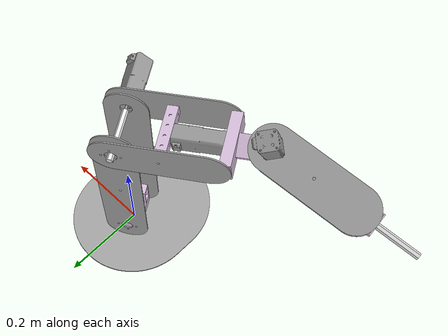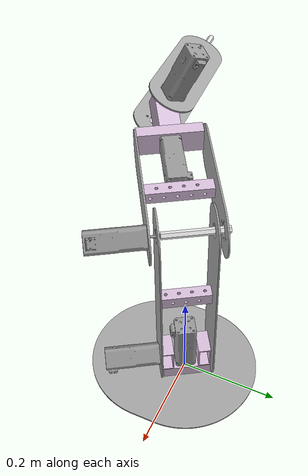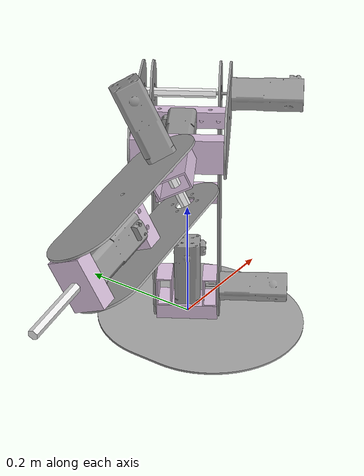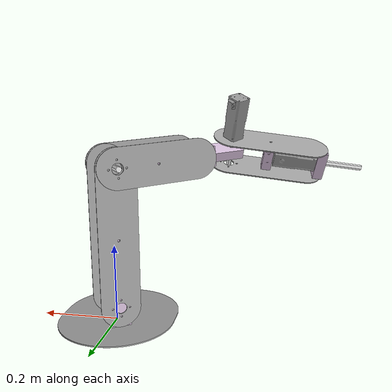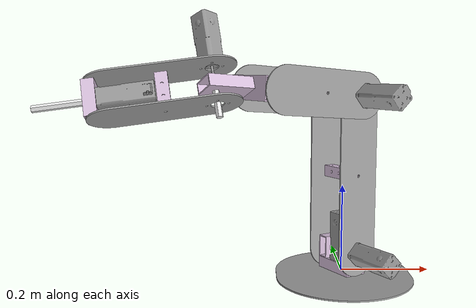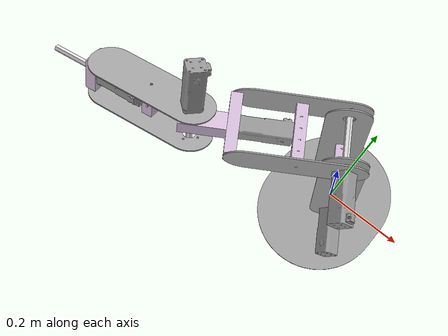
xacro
<?xml version="1.0"?>
<robot xmlns:xacro="http://www.ros.org/wiki/xacro" name="sheet_metal_assembly">
    <xacro:arg name="initial_positions_file" default="initial_positions.yaml" />

    <!-- Import sheet_metal_assembly urdf file -->
    <xacro:include filename="$(find arm_description)/urdf/pdr_robot_arm.urdf.xacro" />

    <!-- Import control_xacro -->
    <xacro:include filename="sheet_metal_assembly.ros2_control.xacro" />

    <xacro:sheet_metal_assembly_ros2_control name="FakeSystem" initial_positions_file="$(arg initial_positions_file)"/>

</robot>

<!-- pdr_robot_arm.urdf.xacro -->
<!--URDF generated by ONSHAPE BY PTC INC, 1.222-->
<robot name="sheet_metal_assembly">
    <link name="extrusion">
        <inertial>
            <mass value="0.0458264" />
            <origin xyz="2.92613e-19 -2.89736e-18 0.0381" rpy="0 -0 0" />
            <inertia ixx="2.66008e-05" ixy="0" ixz="0" iyy="2.66603e-05" iyz="0" izz="8.17947e-06" />
        </inertial>
        <visual>
            <origin xyz="1.43411e-18 -6.66955e-19 0" rpy="0 -0 0" />
            <geometry>
                <mesh filename="package://sheet_metal_assembly/meshes/Extrusion.stl" scale="1 1 1" />
            </geometry>
            <material name="0.850980_0.756863_0.866667_0.000000_0.000000">
                <color rgba="0.85098 0.756863 0.866667 1" />
            </material>
        </visual>
        <collision>
            <origin xyz="1.43411e-18 -6.66955e-19 0" rpy="0 -0 0" />
            <geometry>
                <mesh filename="package://sheet_metal_assembly/meshes/Extrusion.stl" scale="1 1 1" />
            </geometry>
        </collision>
    </link>
    <link name="extrusion_1">
        <inertial>
            <mass value="0.0748823" />
            <origin xyz="0.0127 0 -0.0381" rpy="0 -0 0" />
            <inertia ixx="6.02048e-05" ixy="0" ixz="0" iyy="4.39861e-05" iyz="0" izz="3.17243e-05" />
        </inertial>
        <visual>
            <origin xyz="0.0127 0 -0.0762" rpy="0 -0 0" />
            <geometry>
                <mesh filename="package://sheet_metal_assembly/meshes/Extrusion_1.stl" scale="1 1 1" />
            </geometry>
            <material name="0.850980_0.756863_0.866667_0.000000_0.000000">
                <color rgba="0.85098 0.756863 0.866667 1" />
            </material>
        </visual>
        <collision>
            <origin xyz="0.0127 0 -0.0762" rpy="0 -0 0" />
            <geometry>
                <mesh filename="package://sheet_metal_assembly/meshes/Extrusion_1.stl" scale="1 1 1" />
            </geometry>
        </collision>
    </link>
    <link name="extrusion_2">
        <inertial>
            <mass value="0.0800807" />
            <origin xyz="3.23576e-18 -3.93109e-18 0.06684" rpy="0 -0 0" />
            <inertia ixx="0.000127424" ixy="0" ixz="0" iyy="0.000127484" iyz="0" izz="1.42986e-05" />
        </inertial>
        <visual>
            <origin xyz="1.43411e-18 -6.66955e-19 0" rpy="0 -0 0" />
            <geometry>
                <mesh filename="package://sheet_metal_assembly/meshes/Extrusion_2.stl" scale="1 1 1" />
            </geometry>
            <material name="0.850980_0.756863_0.866667_0.000000_0.000000">
                <color rgba="0.85098 0.756863 0.866667 1" />
            </material>
        </visual>
        <collision>
            <origin xyz="1.43411e-18 -6.66955e-19 0" rpy="0 -0 0" />
            <geometry>
                <mesh filename="package://sheet_metal_assembly/meshes/Extrusion_2.stl" scale="1 1 1" />
            </geometry>
        </collision>
    </link>
    <link name="extrusion_3">
        <inertial>
            <mass value="0.131044" />
            <origin xyz="0.0127 2.19767e-18 -0.066675" rpy="0 -0 0" />
            <inertia ixx="0.000236138" ixy="0" ixz="0" iyy="0.000207755" iyz="0" izz="5.55175e-05" />
        </inertial>
        <visual>
            <origin xyz="0.0127 0 -0.13335" rpy="0 -0 0" />
            <geometry>
                <mesh filename="package://sheet_metal_assembly/meshes/Extrusion_3.stl" scale="1 1 1" />
            </geometry>
            <material name="0.850980_0.756863_0.866667_0.000000_0.000000">
                <color rgba="0.85098 0.756863 0.866667 1" />
            </material>
        </visual>
        <collision>
            <origin xyz="0.0127 0 -0.13335" rpy="0 -0 0" />
            <geometry>
                <mesh filename="package://sheet_metal_assembly/meshes/Extrusion_3.stl" scale="1 1 1" />
            </geometry>
        </collision>
    </link>
    <link name="extrusion_4">
        <inertial>
            <mass value="0.0499216" />
            <origin xyz="0.0127 -1.10205e-17 3.46945e-18" rpy="0 -0 0" />
            <inertia ixx="2.67168e-05" ixy="0" ixz="0" iyy="1.59043e-05" iyz="0" izz="2.11495e-05" />
        </inertial>
        <visual>
            <origin xyz="0.0127 -5.25161e-18 -0.0254" rpy="0 -0 0" />
            <geometry>
                <mesh filename="package://sheet_metal_assembly/meshes/Extrusion_4.stl" scale="1 1 1" />
            </geometry>
            <material name="0.850980_0.756863_0.866667_0.000000_0.000000">
                <color rgba="0.85098 0.756863 0.866667 1" />
            </material>
        </visual>
        <collision>
            <origin xyz="0.0127 -5.25161e-18 -0.0254" rpy="0 -0 0" />
            <geometry>
                <mesh filename="package://sheet_metal_assembly/meshes/Extrusion_4.stl" scale="1 1 1" />
            </geometry>
        </collision>
    </link>
    <link name="extrusion_5">
        <inertial>
            <mass value="0.0499216" />
            <origin xyz="0.0127 0.0254 0" rpy="0 -0 0" />
            <inertia ixx="2.67168e-05" ixy="0" ixz="0" iyy="1.59043e-05" iyz="0" izz="2.11495e-05" />
        </inertial>
        <visual>
            <origin xyz="0.0127 0.0254 -0.0254" rpy="0 -0 0" />
            <geometry>
                <mesh filename="package://sheet_metal_assembly/meshes/Extrusion_4.stl" scale="1 1 1" />
            </geometry>
            <material name="0.850980_0.756863_0.866667_0.000000_0.000000">
                <color rgba="0.85098 0.756863 0.866667 1" />
            </material>
        </visual>
        <collision>
            <origin xyz="0.0127 0.0254 -0.0254" rpy="0 -0 0" />
            <geometry>
                <mesh filename="package://sheet_metal_assembly/meshes/Extrusion_4.stl" scale="1 1 1" />
            </geometry>
        </collision>
    </link>
    <link name="extrusion_6">
        <inertial>
            <mass value="0.0609478" />
            <origin xyz="-3.83099e-18 2.07808e-19 0.0508" rpy="0 -0 0" />
            <inertia ixx="5.85286e-05" ixy="0" ixz="0" iyy="5.8588e-05" iyz="0" izz="1.08853e-05" />
        </inertial>
        <visual>
            <origin xyz="1.43411e-18 -6.66955e-19 0" rpy="0 -0 0" />
            <geometry>
                <mesh filename="package://sheet_metal_assembly/meshes/Extrusion_5.stl" scale="1 1 1" />
            </geometry>
            <material name="0.850980_0.756863_0.866667_0.000000_0.000000">
                <color rgba="0.85098 0.756863 0.866667 1" />
            </material>
        </visual>
        <collision>
            <origin xyz="1.43411e-18 -6.66955e-19 0" rpy="0 -0 0" />
            <geometry>
                <mesh filename="package://sheet_metal_assembly/meshes/Extrusion_5.stl" scale="1 1 1" />
            </geometry>
        </collision>
    </link>
    <link name="extrusion_7">
        <inertial>
            <mass value="0.0998431" />
            <origin xyz="-0.0127 3.46945e-18 -6.93889e-18" rpy="2.58377 -3.61518e-17 -1.26239e-16" />
            <inertia ixx="0.000117848" ixy="0" ixz="0" iyy="9.62234e-05" iyz="0" izz="4.2299e-05" />
        </inertial>
        <visual>
            <origin xyz="-0.0127 0.0268904 0.0430993" rpy="2.58377 -3.61518e-17 -1.26239e-16" />
            <geometry>
                <mesh filename="package://sheet_metal_assembly/meshes/Extrusion_6.stl" scale="1 1 1" />
            </geometry>
            <material name="0.850980_0.756863_0.866667_0.000000_0.000000">
                <color rgba="0.85098 0.756863 0.866667 1" />
            </material>
        </visual>
        <collision>
            <origin xyz="-0.0127 0.0268904 0.0430993" rpy="2.58377 -3.61518e-17 -1.26239e-16" />
            <geometry>
                <mesh filename="package://sheet_metal_assembly/meshes/Extrusion_6.stl" scale="1 1 1" />
            </geometry>
        </collision>
    </link>
    <link name="extrusion_8">
        <inertial>
            <mass value="0.0998431" />
            <origin xyz="-3.29836e-18 5.62702e-18 -0.0508" rpy="0 0 -2.00657" />
            <inertia ixx="0.000117848" ixy="0" ixz="0" iyy="9.62234e-05" iyz="0" izz="4.2299e-05" />
        </inertial>
        <visual>
            <origin xyz="6.03472e-19 3.40065e-19 -0.1016" rpy="0 0 -2.00657" />
            <geometry>
                <mesh filename="package://sheet_metal_assembly/meshes/Extrusion_6.stl" scale="1 1 1" />
            </geometry>
            <material name="0.850980_0.756863_0.866667_0.000000_0.000000">
                <color rgba="0.85098 0.756863 0.866667 1" />
            </material>
        </visual>
        <collision>
            <origin xyz="6.03472e-19 3.40065e-19 -0.1016" rpy="0 0 -2.00657" />
            <geometry>
                <mesh filename="package://sheet_metal_assembly/meshes/Extrusion_6.stl" scale="1 1 1" />
            </geometry>
        </collision>
    </link>
    <link name="extrusion__4__loop_closure">
        <inertial>
            <mass value="1e-09" />
            <origin xyz="0.0127 0.0254 -0.0254" rpy="0 -0 0" />
            <inertia ixx="4e-14" ixy="0" ixz="0" iyy="4e-14" iyz="0" izz="4e-14" />
        </inertial>
    </link>
    <link name="hex_shaft">
        <inertial>
            <mass value="0.139255" />
            <origin xyz="-1.27634e-18 5.76897e-19 0.0635" rpy="0 -0 0" />
            <inertia ixx="0.00018873" ixy="0" ixz="0" iyy="0.00018873" iyz="0" izz="3.11951e-06" />
        </inertial>
        <visual>
            <origin xyz="7.58005e-19 -3.79003e-19 0" rpy="0 -0 0" />
            <geometry>
                <mesh filename="package://sheet_metal_assembly/meshes/Hex_Shaft.stl" scale="1 1 1" />
            </geometry>
            <material name="0.917647_0.917647_0.917647_0.000000_0.000000">
                <color rgba="0.917647 0.917647 0.917647 1" />
            </material>
        </visual>
        <collision>
            <origin xyz="7.58005e-19 -3.79003e-19 0" rpy="0 -0 0" />
            <geometry>
                <mesh filename="package://sheet_metal_assembly/meshes/Hex_Shaft.stl" scale="1 1 1" />
            </geometry>
        </collision>
    </link>
    <link name="hex_shaft_1">
        <inertial>
            <mass value="0.0935795" />
            <origin xyz="-1.18501e-18 5.05704e-19 0.042672" rpy="0 -0 0" />
            <inertia ixx="5.78478e-05" ixy="0" ixz="0" iyy="5.78478e-05" iyz="0" izz="2.09631e-06" />
        </inertial>
        <visual>
            <origin xyz="7.58005e-19 -3.79003e-19 0" rpy="0 -0 0" />
            <geometry>
                <mesh filename="package://sheet_metal_assembly/meshes/Hex_Shaft_1.stl" scale="1 1 1" />
            </geometry>
            <material name="0.917647_0.917647_0.917647_0.000000_0.000000">
                <color rgba="0.917647 0.917647 0.917647 1" />
            </material>
        </visual>
        <collision>
            <origin xyz="7.58005e-19 -3.79003e-19 0" rpy="0 -0 0" />
            <geometry>
                <mesh filename="package://sheet_metal_assembly/meshes/Hex_Shaft_1.stl" scale="1 1 1" />
            </geometry>
        </collision>
    </link>
    <link name="hex_shaft_2">
        <inertial>
            <mass value="0.111404" />
            <origin xyz="9.8998e-19 8.14552e-19 0.0508" rpy="0 -0 -2.12333" />
            <inertia ixx="9.70792e-05" ixy="0" ixz="0" iyy="9.70792e-05" iyz="0" izz="2.49561e-06" />
        </inertial>
        <visual>
            <origin xyz="-7.20443e-19 -4.46293e-19 0" rpy="0 -0 -2.12333" />
            <geometry>
                <mesh filename="package://sheet_metal_assembly/meshes/Hex_Shaft_2.stl" scale="1 1 1" />
            </geometry>
            <material name="0.917647_0.917647_0.917647_0.000000_0.000000">
                <color rgba="0.917647 0.917647 0.917647 1" />
            </material>
        </visual>
        <collision>
            <origin xyz="-7.20443e-19 -4.46293e-19 0" rpy="0 -0 -2.12333" />
            <geometry>
                <mesh filename="package://sheet_metal_assembly/meshes/Hex_Shaft_2.stl" scale="1 1 1" />
            </geometry>
        </collision>
    </link>
    <link name="root" />
    <link name="sheet_joint">
        <inertial>
            <mass value="0.241787" />
            <origin xyz="-0.0486687 0.0015875 0.0921633" rpy="0 -0.485851 0" />
            <inertia ixx="0.00162173" ixy="0" ixz="0" iyy="0.00181961" iyz="0" izz="0.000198288" />
        </inertial>
        <visual>
            <origin xyz="-1.45253e-18 0.003175 2.75064e-18" rpy="0 -0.485851 0" />
            <geometry>
                <mesh filename="package://sheet_metal_assembly/meshes/Sheet_Joint.stl" scale="1 1 1" />
            </geometry>
            <material name="0.647059_0.647059_0.647059_0.000000_0.000000">
                <color rgba="0.647059 0.647059 0.647059 1" />
            </material>
        </visual>
        <collision>
            <origin xyz="-1.45253e-18 0.003175 2.75064e-18" rpy="0 -0.485851 0" />
            <geometry>
                <mesh filename="package://sheet_metal_assembly/meshes/Sheet_Joint.stl" scale="1 1 1" />
            </geometry>
        </collision>
    </link>
    <link name="sheet_joint_1">
        <inertial>
            <mass value="0.757606" />
            <origin xyz="2.7704e-17 -0.0015875 0.0256094" rpy="0 -0 0" />
            <inertia ixx="0.00616072" ixy="0" ixz="0" iyy="0.0108537" iyz="0" izz="0.00469425" />
        </inertial>
        <visual>
            <origin xyz="0 0 0" rpy="0 -0 0" />
            <geometry>
                <mesh filename="package://sheet_metal_assembly/meshes/Sheet_Joint_1.stl" scale="1 1 1" />
            </geometry>
            <material name="0.647059_0.647059_0.647059_0.000000_0.000000">
                <color rgba="0.647059 0.647059 0.647059 1" />
            </material>
        </visual>
        <collision>
            <origin xyz="0 0 0" rpy="0 -0 0" />
            <geometry>
                <mesh filename="package://sheet_metal_assembly/meshes/Sheet_Joint_1.stl" scale="1 1 1" />
            </geometry>
        </collision>
    </link>
    <link name="sheet_joint_2">
        <inertial>
            <mass value="0.241787" />
            <origin xyz="0.103907 0.0015875 0.00813209" rpy="0 1.49269 0" />
            <inertia ixx="0.00162173" ixy="0" ixz="0" iyy="0.00181961" iyz="0" izz="0.000198288" />
        </inertial>
        <visual>
            <origin xyz="3.10112e-18 0.003175 2.42704e-19" rpy="0 1.49269 0" />
            <geometry>
                <mesh filename="package://sheet_metal_assembly/meshes/Sheet_Joint.stl" scale="1 1 1" />
            </geometry>
            <material name="0.647059_0.647059_0.647059_0.000000_0.000000">
                <color rgba="0.647059 0.647059 0.647059 1" />
            </material>
        </visual>
        <collision>
            <origin xyz="3.10112e-18 0.003175 2.42704e-19" rpy="0 1.49269 0" />
            <geometry>
                <mesh filename="package://sheet_metal_assembly/meshes/Sheet_Joint.stl" scale="1 1 1" />
            </geometry>
        </collision>
    </link>
    <link name="sheet_joint_3">
        <inertial>
            <mass value="0.241787" />
            <origin xyz="0.103907 0.0015875 0.00813209" rpy="0 1.49269 0" />
            <inertia ixx="0.00162173" ixy="0" ixz="0" iyy="0.00181961" iyz="0" izz="0.000198288" />
        </inertial>
        <visual>
            <origin xyz="3.10112e-18 0.003175 2.42704e-19" rpy="0 1.49269 0" />
            <geometry>
                <mesh filename="package://sheet_metal_assembly/meshes/Sheet_Joint.stl" scale="1 1 1" />
            </geometry>
            <material name="0.647059_0.647059_0.647059_0.000000_0.000000">
                <color rgba="0.647059 0.647059 0.647059 1" />
            </material>
        </visual>
        <collision>
            <origin xyz="3.10112e-18 0.003175 2.42704e-19" rpy="0 1.49269 0" />
            <geometry>
                <mesh filename="package://sheet_metal_assembly/meshes/Sheet_Joint.stl" scale="1 1 1" />
            </geometry>
        </collision>
    </link>
    <link name="sheet_joint_4">
        <inertial>
            <mass value="0.369967" />
            <origin xyz="4.02208e-18 -0.0015875 0.17814" rpy="0 -0 0" />
            <inertia ixx="0.00571018" ixy="0" ixz="0" iyy="0.0060227" iyz="0" izz="0.00031314" />
        </inertial>
        <visual>
            <origin xyz="0 0 0" rpy="0 -0 0" />
            <geometry>
                <mesh filename="package://sheet_metal_assembly/meshes/Sheet_Joint_2.stl" scale="1 1 1" />
            </geometry>
            <material name="0.647059_0.647059_0.647059_0.000000_0.000000">
                <color rgba="0.647059 0.647059 0.647059 1" />
            </material>
        </visual>
        <collision>
            <origin xyz="0 0 0" rpy="0 -0 0" />
            <geometry>
                <mesh filename="package://sheet_metal_assembly/meshes/Sheet_Joint_2.stl" scale="1 1 1" />
            </geometry>
        </collision>
    </link>
    <link name="sheet_joint_5">
        <inertial>
            <mass value="0.369967" />
            <origin xyz="4.02208e-18 -0.0015875 0.17814" rpy="0 -0 0" />
            <inertia ixx="0.00571018" ixy="0" ixz="0" iyy="0.0060227" iyz="0" izz="0.00031314" />
        </inertial>
        <visual>
            <origin xyz="0 0 0" rpy="0 -0 0" />
            <geometry>
                <mesh filename="package://sheet_metal_assembly/meshes/Sheet_Joint_2.stl" scale="1 1 1" />
            </geometry>
            <material name="0.647059_0.647059_0.647059_0.000000_0.000000">
                <color rgba="0.647059 0.647059 0.647059 1" />
            </material>
        </visual>
        <collision>
            <origin xyz="0 0 0" rpy="0 -0 0" />
            <geometry>
                <mesh filename="package://sheet_metal_assembly/meshes/Sheet_Joint_2.stl" scale="1 1 1" />
            </geometry>
        </collision>
    </link>
    <link name="sheet_joint_6">
        <inertial>
            <mass value="0.241787" />
            <origin xyz="-0.0486687 0.0015875 0.0921633" rpy="0 -0.485851 0" />
            <inertia ixx="0.00162173" ixy="0" ixz="0" iyy="0.00181961" iyz="0" izz="0.000198288" />
        </inertial>
        <visual>
            <origin xyz="-1.45253e-18 0.003175 2.75064e-18" rpy="0 -0.485851 0" />
            <geometry>
                <mesh filename="package://sheet_metal_assembly/meshes/Sheet_Joint.stl" scale="1 1 1" />
            </geometry>
            <material name="0.647059_0.647059_0.647059_0.000000_0.000000">
                <color rgba="0.647059 0.647059 0.647059 1" />
            </material>
        </visual>
        <collision>
            <origin xyz="-1.45253e-18 0.003175 2.75064e-18" rpy="0 -0.485851 0" />
            <geometry>
                <mesh filename="package://sheet_metal_assembly/meshes/Sheet_Joint.stl" scale="1 1 1" />
            </geometry>
        </collision>
    </link>
    <link name="part_42">
        <inertial>
            <mass value="1.53767" />
            <origin xyz="-0.0154818 -0.0158656 -0.0564038" rpy="0 -0 0" />
            <inertia ixx="0.00186047" ixy="-1.49888e-08" ixz="8.88124e-07" iyy="0.00184648" iyz="-2.39209e-05" izz="0.000440814" />
        </inertial>
        <visual>
            <origin xyz="-0.0155 -0.0155 0" rpy="0 -0 0" />
            <geometry>
                <mesh filename="package://sheet_metal_assembly/meshes/____42.stl" scale="1 1 1" />
            </geometry>
            <material name="0.600000_0.600000_0.600000_0.000000_0.000000">
                <color rgba="0.6 0.6 0.6 1" />
            </material>
        </visual>
        <collision>
            <origin xyz="-0.0155 -0.0155 0" rpy="0 -0 0" />
            <geometry>
                <mesh filename="package://sheet_metal_assembly/meshes/____42.stl" scale="1 1 1" />
            </geometry>
        </collision>
    </link>
    <link name="part_42_1">
        <inertial>
            <mass value="1.53767" />
            <origin xyz="1.82117e-05 -0.000365594 -0.0564038" rpy="0 -0 0" />
            <inertia ixx="0.00186047" ixy="-1.49888e-08" ixz="8.88124e-07" iyy="0.00184648" iyz="-2.39209e-05" izz="0.000440814" />
        </inertial>
        <visual>
            <origin xyz="0 0 0" rpy="0 -0 0" />
            <geometry>
                <mesh filename="package://sheet_metal_assembly/meshes/____42.stl" scale="1 1 1" />
            </geometry>
            <material name="0.600000_0.600000_0.600000_0.000000_0.000000">
                <color rgba="0.6 0.6 0.6 1" />
            </material>
        </visual>
        <collision>
            <origin xyz="0 0 0" rpy="0 -0 0" />
            <geometry>
                <mesh filename="package://sheet_metal_assembly/meshes/____42.stl" scale="1 1 1" />
            </geometry>
        </collision>
    </link>
    <link name="part_42_2">
        <inertial>
            <mass value="1.53767" />
            <origin xyz="1.82117e-05 -0.000365594 -0.0564038" rpy="0 -0 0" />
            <inertia ixx="0.00186047" ixy="-1.49888e-08" ixz="8.88124e-07" iyy="0.00184648" iyz="-2.39209e-05" izz="0.000440814" />
        </inertial>
        <visual>
            <origin xyz="0 0 0" rpy="0 -0 0" />
            <geometry>
                <mesh filename="package://sheet_metal_assembly/meshes/____42.stl" scale="1 1 1" />
            </geometry>
            <material name="0.600000_0.600000_0.600000_0.000000_0.000000">
                <color rgba="0.6 0.6 0.6 1" />
            </material>
        </visual>
        <collision>
            <origin xyz="0 0 0" rpy="0 -0 0" />
            <geometry>
                <mesh filename="package://sheet_metal_assembly/meshes/____42.stl" scale="1 1 1" />
            </geometry>
        </collision>
    </link>
    <link name="part_42_3">
        <inertial>
            <mass value="1.53767" />
            <origin xyz="-0.0154818 -0.0158656 -0.0564038" rpy="0 -0 0" />
            <inertia ixx="0.00186047" ixy="-1.49888e-08" ixz="8.88124e-07" iyy="0.00184648" iyz="-2.39209e-05" izz="0.000440814" />
        </inertial>
        <visual>
            <origin xyz="-0.0155 -0.0155 0" rpy="0 -0 0" />
            <geometry>
                <mesh filename="package://sheet_metal_assembly/meshes/____42.stl" scale="1 1 1" />
            </geometry>
            <material name="0.600000_0.600000_0.600000_0.000000_0.000000">
                <color rgba="0.6 0.6 0.6 1" />
            </material>
        </visual>
        <collision>
            <origin xyz="-0.0155 -0.0155 0" rpy="0 -0 0" />
            <geometry>
                <mesh filename="package://sheet_metal_assembly/meshes/____42.stl" scale="1 1 1" />
            </geometry>
        </collision>
    </link>
    <link name="part_42_4">
        <inertial>
            <mass value="1.53767" />
            <origin xyz="0.0155182 0.0151344 -0.0564038" rpy="0 -0 0" />
            <inertia ixx="0.00186047" ixy="-1.49888e-08" ixz="8.88124e-07" iyy="0.00184648" iyz="-2.39209e-05" izz="0.000440814" />
        </inertial>
        <visual>
            <origin xyz="0.0155 0.0155 0" rpy="0 -0 0" />
            <geometry>
                <mesh filename="package://sheet_metal_assembly/meshes/____42.stl" scale="1 1 1" />
            </geometry>
            <material name="0.600000_0.600000_0.600000_0.000000_0.000000">
                <color rgba="0.6 0.6 0.6 1" />
            </material>
        </visual>
        <collision>
            <origin xyz="0.0155 0.0155 0" rpy="0 -0 0" />
            <geometry>
                <mesh filename="package://sheet_metal_assembly/meshes/____42.stl" scale="1 1 1" />
            </geometry>
        </collision>
    </link>
    <link name="part_42_5">
        <inertial>
            <mass value="1.53767" />
            <origin xyz="1.82117e-05 -0.000365594 -0.0564038" rpy="0 -0 0" />
            <inertia ixx="0.00186047" ixy="-1.49888e-08" ixz="8.88124e-07" iyy="0.00184648" iyz="-2.39209e-05" izz="0.000440814" />
        </inertial>
        <visual>
            <origin xyz="0 0 0" rpy="0 -0 0" />
            <geometry>
                <mesh filename="package://sheet_metal_assembly/meshes/____42.stl" scale="1 1 1" />
            </geometry>
            <material name="0.600000_0.600000_0.600000_0.000000_0.000000">
                <color rgba="0.6 0.6 0.6 1" />
            </material>
        </visual>
        <collision>
            <origin xyz="0 0 0" rpy="0 -0 0" />
            <geometry>
                <mesh filename="package://sheet_metal_assembly/meshes/____42.stl" scale="1 1 1" />
            </geometry>
        </collision>
    </link>

    <!-- Structural Fixed Joints -->
    <joint name="fastened_1" type="fixed">
        <origin xyz="-0.0254 0.0268904 0.0430993" rpy="3.14159 1.01298 -1.5708" />
        <axis xyz="0 -1 0" />
        <parent link="extrusion_7" />
        <child link="extrusion_5" />
    </joint>
    <joint name="fastened_10" type="fixed">
        <origin xyz="-0.0474432 5.55112e-17 0.0898427" rpy="1.5708 -0.485851 7.84696e-16" />
        <axis xyz="0 0 -1" />
        <parent link="sheet_joint" />
        <child link="extrusion" />
    </joint>
    <joint name="fastened_11" type="fixed">
        <origin xyz="0.0254 0 -0.066675" rpy="1.5708 3.88578e-16 -1.5708" />
        <axis xyz="0 0 1" />
        <parent link="extrusion_3" />
        <child link="part_42_2" />
    </joint>
    <joint name="fastened_12" type="fixed">
        <origin xyz="0.0219075 1.38778e-17 0" rpy="1.5708 0.785398 4.78878e-15" />
        <axis xyz="0 0 1" />
        <parent link="sheet_joint_4" />
        <child link="part_42_3" />
    </joint>
    <joint name="fastened_13" type="fixed">
        <origin xyz="-0.0254 7.88807e-18 7.43174e-18" rpy="1.5708 0.55782 1.5708" />
        <axis xyz="0 0 1" />
        <parent link="extrusion_7" />
        <child link="part_42_5" />
    </joint>
    <joint name="fastened_14" type="fixed">
        <origin xyz="-0.118608 5.55112e-17 0.224607" rpy="-1.5708 1.08495 1.90204e-15" />
        <axis xyz="0 0 1" />
        <parent link="sheet_joint" />
        <child link="extrusion_1" />
    </joint>
    <joint name="fastened_15" type="fixed">
        <origin xyz="0.0254 0 -0.0381" rpy="0 -1.5708 -2.83107e-15" />
        <axis xyz="0 0 1" />
        <parent link="extrusion_1" />
        <child link="part_42_1" />
    </joint>
    <joint name="fastened_2_loop_closure" type="fixed">
        <origin xyz="-0.0254 -0.0268904 -0.0430993" rpy="0 -1.01298 1.5708" />
        <axis xyz="0 -1 0" />
        <parent link="extrusion_7" />
        <child link="extrusion__4__loop_closure" />
    </joint>
    <joint name="fastened_3" type="fixed">
        <origin xyz="-0.00170933 0.003175 0.0218407" rpy="-1.5708 0.863502 3.14159" />
        <axis xyz="0 0 1" />
        <parent link="sheet_joint_2" />
        <child link="part_42_4" />
    </joint>
    <joint name="fastened_4" type="fixed">
        <origin xyz="0.0155 0.0155 0.024" rpy="3.007e-15 -2.86931e-15 8.88178e-16" />
        <axis xyz="0 0 -1" />
        <parent link="part_42_4" />
        <child link="hex_shaft" />
    </joint>
    <joint name="fastened_5" type="fixed">
        <origin xyz="7.72043e-17 -0.003175 0.1778" rpy="1.5708 -1.26429e-15 1.36769e-15" />
        <axis xyz="0 0 -1" />
        <parent link="sheet_joint_4" />
        <child link="extrusion_6" />
    </joint>
    <joint name="fastened_6" type="fixed">
        <origin xyz="0.253226 -2.77556e-17 0.0198183" rpy="1.5708 0.0781043 -3.14159" />
        <axis xyz="0 0 1" />
        <parent link="sheet_joint_2" />
        <child link="extrusion_3" />
    </joint>
    <joint name="fastened_7" type="fixed">
        <origin xyz="0.0193723 0.003175 0.0102299" rpy="1.5708 0.299548 2.93396e-15" />
        <axis xyz="0 0 1" />
        <parent link="sheet_joint" />
        <child link="part_42" />
    </joint>
    <joint name="fastened_8" type="fixed">
        <origin xyz="-0.0155 -0.0155 0.024" rpy="4.01068e-15 -4.82947e-15 -5.84255e-15" />
        <axis xyz="0 0 -1" />
        <parent link="part_42" />
        <child link="hex_shaft_1" />
    </joint>
    <joint name="fastened_9" type="fixed">
        <origin xyz="0.10129 -1.38778e-17 0.00792733" rpy="1.5708 1.49269 -1.42291e-15" />
        <axis xyz="0 0 -1" />
        <parent link="sheet_joint_2" />
        <child link="extrusion_2" />
    </joint>

    <!-- Base Mount -->
    <joint name="fixed_node_to_root_joint_1" type="fixed">
        <origin xyz="0 0 0" rpy="1.5708 -0 0" />
        <axis xyz="0 0 1" />
        <parent link="root" />
        <child link="sheet_joint_1" />
    </joint>

    <!-- Motor gear fixed to lower arm bracket -->
    <joint name="motor_gear_fix" type="fixed">
        <origin xyz="2.89322e-18 -0.003175 -1.38778e-17" rpy="1.5708 -0 -1.5708" />
        <parent link="sheet_joint_4" />
        <child link="extrusion_4" />
    </joint>

    <!-- Command Actuation Joints -->

    <!-- Yaw Base -->
    <joint name="revolute_1" type="revolute">
        <origin xyz="3.46945e-18 0 0" rpy="3.14159 2.03212e-16 -1.5708" />
        <axis xyz="1 -6.82962e-17 0" />
        <parent link="sheet_joint_1" />
        <child link="extrusion_7" />
        <limit effort="10.0" velocity="10.0" lower="-3.14159" upper="3.14159" />
    </joint>

    <!-- Fix 1: Shoulder Pitch - Matrix mathematically corrected to sit properly above the extrusion base -->
    <joint name="revolute_2" type="revolute">
        <origin xyz="-0.0508 -0.028571 -0.045793" rpy="1.5708 2.58377 -1.5708" />
        <axis xyz="0 -1 0" />
        <parent link="extrusion_7" />
        <child link="sheet_joint_4" />
        <limit effort="10.0" velocity="10.0" lower="-1.2" upper="1.2" />
    </joint>

    <joint name="revolute_2_mimic" type="revolute">
        <origin xyz="-0.0508 0.0268904 0.0430993" rpy="1.5708 2.58377 -1.5708" />
        <axis xyz="0 -1 0" />
        <parent link="extrusion_7" />
        <child link="sheet_joint_5" />
        <mimic joint="revolute_2" multiplier="1" />
        <limit effort="10.0" velocity="10.0" lower="-3.14159" upper="3.14159" />
    </joint>

    <!-- Elbow Pitch -->
    <joint name="revolute_3" type="revolute">
        <origin xyz="2.66152e-17 0.0127 0.3556" rpy="-2.01602e-15 1.47843e-16 -2.77556e-16" />
        <axis xyz="0 -1 0" />
        <parent link="sheet_joint_4" />
        <child link="sheet_joint_2" />

        <limit effort="10.0" velocity="10.0" lower="-1" upper="3.14159" />
    </joint>

    <joint name="revolute_3_1" type="revolute">
        <origin xyz="-4.60983e-18 -0.123825 0.3556" rpy="1.27117e-15 -2.78955e-16 5.52336e-15" />
        <axis xyz="0 -1 0" />
        <parent link="sheet_joint_4" />
        <child link="sheet_joint_3" />
        <mimic joint="revolute_3" multiplier="1" />
        <limit effort="10.0" velocity="10.0" lower="-3.14159" upper="3.14159" />
    </joint>

    <!-- Upper Arm & Wrist Joints -->
    <joint name="revolute_4" type="revolute">
        <origin xyz="5.55112e-17 0 -0.066675" rpy="0 -1.5708 3.14159" />
        <axis xyz="0 0 1" />
        <parent link="extrusion_3" />
        <child link="extrusion_8" />
        <limit effort="10.0" velocity="10.0" lower="-3.14159" upper="3.14159" />
    </joint>

    <joint name="revolute_5" type="revolute">
        <origin xyz="-0.0160825 -0.0345393 -0.0762" rpy="3.14159 -1.35925e-15 -0.435776" />
        <axis xyz="0 -1 0" />
        <parent link="extrusion_8" />
        <child link="sheet_joint" />
        <limit effort="10.0" velocity="10.0" lower="-1.5" upper="1.5" />
    </joint>

    <joint name="revolute_5_1" type="revolute">
        <origin xyz="0.0174227 0.0374176 -0.0762" rpy="3.14159 -2.86528e-15 -0.435776" />
        <axis xyz="0 -1 0" />
        <parent link="extrusion_8" />
        <child link="sheet_joint_6" />
        <mimic joint="revolute_5" multiplier="1" />
        <limit effort="10.0" velocity="10.0" lower="-3.14159" upper="3.14159" />
    </joint>

    <!-- End Effector -->
    <joint name="revolute_6" type="revolute">
        <origin xyz="0 -4.69337e-05 0.024" rpy="-9.05526e-15 5.41234e-16 -1.5708" />
        <axis xyz="0 0 -1" />
        <parent link="part_42_1" />
        <child link="hex_shaft_2" />
        <limit effort="10.0" velocity="10.0" lower="-3.14159" upper="3.14159" />
    </joint>

    <ros2_control name="SheetMetalAssembly" type="system">
        <hardware>
            <plugin>mock_components/GenericSystem</plugin>
        </hardware>
        <joint name="revolute_1">
            <command_interface name="position"/>
            <state_interface name="position"/>
            <state_interface name="velocity"/>
        </joint>
        <joint name="revolute_2">
            <command_interface name="position"/>
            <state_interface name="position"/>
            <state_interface name="velocity"/>
        </joint>
        <joint name="revolute_3">
            <command_interface name="position"/>
            <state_interface name="position"/>
            <state_interface name="velocity"/>
        </joint>
        <joint name="revolute_4">
            <command_interface name="position"/>
            <state_interface name="position"/>
            <state_interface name="velocity"/>
        </joint>
        <joint name="revolute_5">
            <command_interface name="position"/>
            <state_interface name="position"/>
            <state_interface name="velocity"/>
        </joint>
        <joint name="revolute_6">
            <command_interface name="position"/>
            <state_interface name="position"/>
            <state_interface name="velocity"/>
        </joint>
    </ros2_control>
</robot>
